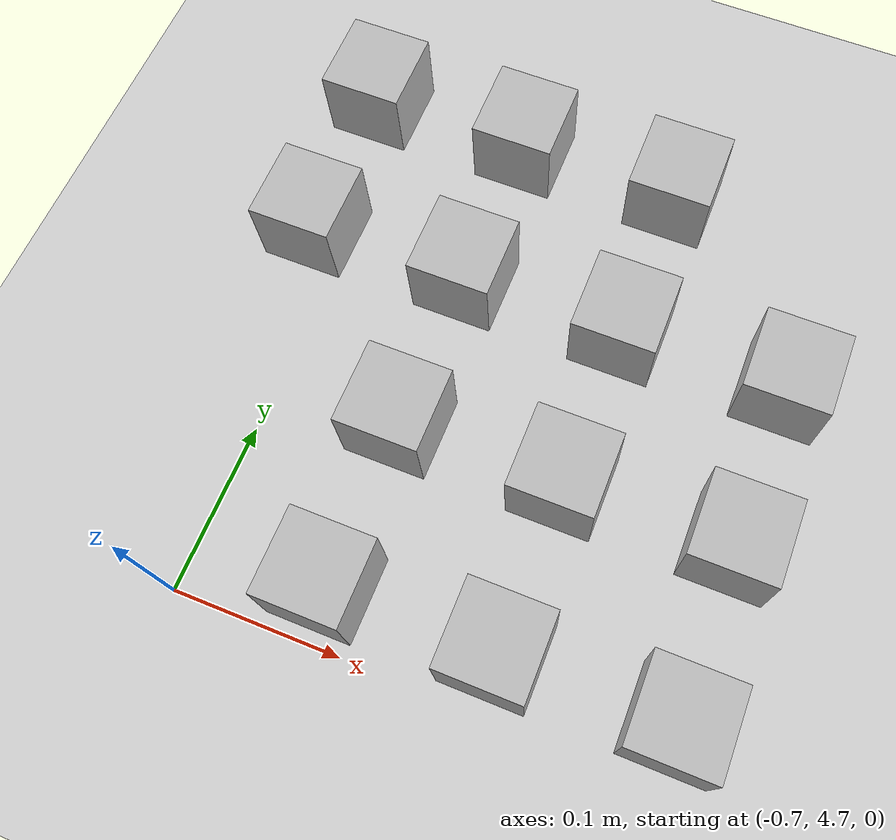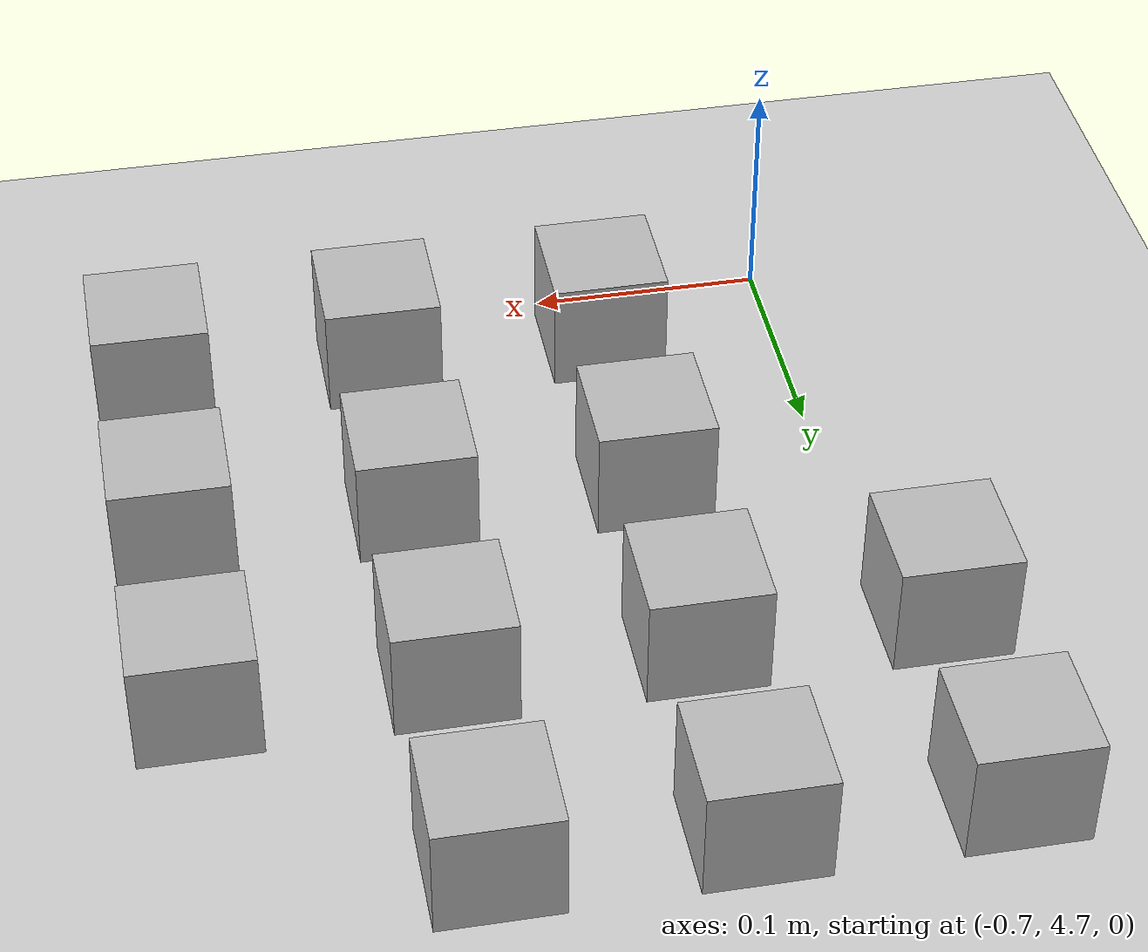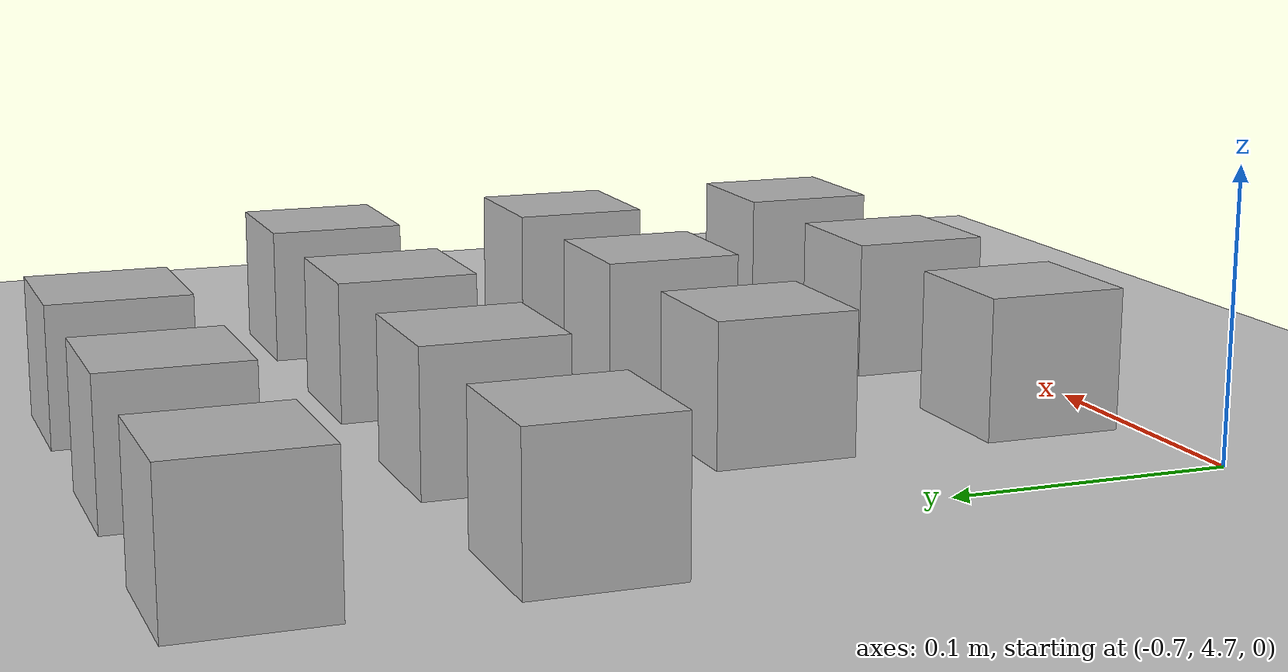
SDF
<sdf version="1.4">
 <world name="default">
  <model name="ground_plane">
   <static>1</static>
   <link name="link">
    <collision name="collision">
     <geometry><plane><normal>0 0 1</normal><size>100 100</size></plane></geometry>
     <surface><friction><ode><mu>100</mu><mu2>50</mu2></ode></friction></surface>
    </collision>
    <visual name="visual">
     <cast_shadows>0</cast_shadows>
     <geometry><plane><normal>0 0 1</normal><size>100 100</size></plane></geometry>
     <material>
      <script><uri>file://media/materials/scripts/gazebo.material</uri><name>Gazebo/Grey</name></script>
     </material>
    </visual>
    <velocity_decay><linear>0</linear><angular>0</angular></velocity_decay>
   </link>
  </model>
  <model name="at37">
   <static>0</static>
   <link name="link">
    <inertial>
     <mass>0.01</mass>
     <inertia><ixx>4e-05</ixx><ixy>0</ixy><ixz>0</ixz><iyy>4e-05</iyy><iyz>0</iyz><izz>4e-05</izz></inertia>
    </inertial>
    <visual name="visual">
     <geometry><box><size>0.05 0.05 0.05</size></box></geometry>
     <material>
      <script>
       <uri>model://at0/materials/scripts</uri>
       <uri>model://at0/materials/textures</uri>
       <name>at0/Diffuse</name>
      </script>
     </material>
    </visual>
    <collision name="collision">
     <geometry><box><size>0.05 0.05 0.05</size></box></geometry>
     <surface><friction><ode><mu>0.8</mu><mu2>0.7</mu2></ode></friction></surface>
    </collision>
    <velocity_decay><linear>0</linear><angular>0</angular></velocity_decay>
   </link>
   <pose>-0.622342 4.73291 0.025 0 -0 0</pose>
  </model>
  <model name="at38">
   <static>0</static>
   <link name="link">
    <inertial>
     <mass>0.01</mass>
     <inertia><ixx>4e-05</ixx><ixy>0</ixy><ixz>0</ixz><iyy>4e-05</iyy><iyz>0</iyz><izz>4e-05</izz></inertia>
    </inertial>
    <visual name="visual">
     <geometry><box><size>0.05 0.05 0.05</size></box></geometry>
     <material>
      <script>
       <uri>model://at0/materials/scripts</uri>
       <uri>model://at0/materials/textures</uri>
       <name>at0/Diffuse</name>
      </script>
     </material>
    </visual>
    <collision name="collision">
     <geometry><box><size>0.05 0.05 0.05</size></box></geometry>
     <surface><friction><ode><mu>0.8</mu><mu2>0.7</mu2></ode></friction></surface>
    </collision>
    <velocity_decay><linear>0</linear><angular>0</angular></velocity_decay>
   </link>
   <pose>-0.522342 4.73291 0.025 0 -0 0</pose>
  </model>
  <model name="at39">
   <static>0</static>
   <link name="link">
    <inertial>
     <mass>0.01</mass>
     <inertia><ixx>4e-05</ixx><ixy>0</ixy><ixz>0</ixz><iyy>4e-05</iyy><iyz>0</iyz><izz>4e-05</izz></inertia>
    </inertial>
    <visual name="visual">
     <geometry><box><size>0.05 0.05 0.05</size></box></geometry>
     <material>
      <script>
       <uri>model://at0/materials/scripts</uri>
       <uri>model://at0/materials/textures</uri>
       <name>at0/Diffuse</name>
      </script>
     </material>
    </visual>
    <collision name="collision">
     <geometry><box><size>0.05 0.05 0.05</size></box></geometry>
     <surface><friction><ode><mu>0.8</mu><mu2>0.7</mu2></ode></friction></surface>
    </collision>
    <velocity_decay><linear>0</linear><angular>0</angular></velocity_decay>
   </link>
   <pose>-0.422342 4.73291 0.025 0 -0 0</pose>
  </model>
  <model name="at45">
   <static>0</static>
   <link name="link">
    <inertial>
     <mass>0.01</mass>
     <inertia><ixx>4e-05</ixx><ixy>0</ixy><ixz>0</ixz><iyy>4e-05</iyy><iyz>0</iyz><izz>4e-05</izz></inertia>
    </inertial>
    <visual name="visual">
     <geometry><box><size>0.05 0.05 0.05</size></box></geometry>
     <material>
      <script>
       <uri>model://at0/materials/scripts</uri>
       <uri>model://at0/materials/textures</uri>
       <name>at0/Diffuse</name>
      </script>
     </material>
    </visual>
    <collision name="collision">
     <geometry><box><size>0.05 0.05 0.05</size></box></geometry>
     <surface><friction><ode><mu>0.8</mu><mu2>0.7</mu2></ode></friction></surface>
    </collision>
    <velocity_decay><linear>0</linear><angular>0</angular></velocity_decay>
   </link>
   <pose>-0.622342 4.83291 0.025 0 -0 0</pose>
  </model>
  <model name="at46">
   <static>0</static>
   <link name="link">
    <inertial>
     <mass>0.01</mass>
     <inertia><ixx>4e-05</ixx><ixy>0</ixy><ixz>0</ixz><iyy>4e-05</iyy><iyz>0</iyz><izz>4e-05</izz></inertia>
    </inertial>
    <visual name="visual">
     <geometry><box><size>0.05 0.05 0.05</size></box></geometry>
     <material>
      <script>
       <uri>model://at0/materials/scripts</uri>
       <uri>model://at0/materials/textures</uri>
       <name>at0/Diffuse</name>
      </script>
     </material>
    </visual>
    <collision name="collision">
     <geometry><box><size>0.05 0.05 0.05</size></box></geometry>
     <surface><friction><ode><mu>0.8</mu><mu2>0.7</mu2></ode></friction></surface>
    </collision>
    <velocity_decay><linear>0</linear><angular>0</angular></velocity_decay>
   </link>
   <pose>-0.522342 4.83291 0.025 0 -0 0</pose>
  </model>
  <model name="at47">
   <static>0</static>
   <link name="link">
    <inertial>
     <mass>0.01</mass>
     <inertia><ixx>4e-05</ixx><ixy>0</ixy><ixz>0</ixz><iyy>4e-05</iyy><iyz>0</iyz><izz>4e-05</izz></inertia>
    </inertial>
    <visual name="visual">
     <geometry><box><size>0.05 0.05 0.05</size></box></geometry>
     <material>
      <script>
       <uri>model://at0/materials/scripts</uri>
       <uri>model://at0/materials/textures</uri>
       <name>at0/Diffuse</name>
      </script>
     </material>
    </visual>
    <collision name="collision">
     <geometry><box><size>0.05 0.05 0.05</size></box></geometry>
     <surface><friction><ode><mu>0.8</mu><mu2>0.7</mu2></ode></friction></surface>
    </collision>
    <velocity_decay><linear>0</linear><angular>0</angular></velocity_decay>
   </link>
   <pose>-0.422342 4.83291 0.025 0 -0 0</pose>
  </model>
  <model name="at52">
   <static>0</static>
   <link name="link">
    <inertial>
     <mass>0.01</mass>
     <inertia><ixx>4e-05</ixx><ixy>0</ixy><ixz>0</ixz><iyy>4e-05</iyy><iyz>0</iyz><izz>4e-05</izz></inertia>
    </inertial>
    <visual name="visual">
     <geometry><box><size>0.05 0.05 0.05</size></box></geometry>
     <material>
      <script>
       <uri>model://at0/materials/scripts</uri>
       <uri>model://at0/materials/textures</uri>
       <name>at0/Diffuse</name>
      </script>
     </material>
    </visual>
    <collision name="collision">
     <geometry><box><size>0.05 0.05 0.05</size></box></geometry>
     <surface><friction><ode><mu>0.8</mu><mu2>0.7</mu2></ode></friction></surface>
    </collision>
    <velocity_decay><linear>0</linear><angular>0</angular></velocity_decay>
   </link>
   <pose>-0.722342 4.93291 0.025 0 -0 0</pose>
  </model>
  <model name="at53">
   <static>0</static>
   <link name="link">
    <inertial>
     <mass>0.01</mass>
     <inertia><ixx>4e-05</ixx><ixy>0</ixy><ixz>0</ixz><iyy>4e-05</iyy><iyz>0</iyz><izz>4e-05</izz></inertia>
    </inertial>
    <visual name="visual">
     <geometry><box><size>0.05 0.05 0.05</size></box></geometry>
     <material>
      <script>
       <uri>model://at0/materials/scripts</uri>
       <uri>model://at0/materials/textures</uri>
       <name>at0/Diffuse</name>
      </script>
     </material>
    </visual>
    <collision name="collision">
     <geometry><box><size>0.05 0.05 0.05</size></box></geometry>
     <surface><friction><ode><mu>0.8</mu><mu2>0.7</mu2></ode></friction></surface>
    </collision>
    <velocity_decay><linear>0</linear><angular>0</angular></velocity_decay>
   </link>
   <pose>-0.622342 4.93291 0.025 0 -0 0</pose>
  </model>
  <model name="at54">
   <static>0</static>
   <link name="link">
    <inertial>
     <mass>0.01</mass>
     <inertia><ixx>4e-05</ixx><ixy>0</ixy><ixz>0</ixz><iyy>4e-05</iyy><iyz>0</iyz><izz>4e-05</izz></inertia>
    </inertial>
    <visual name="visual">
     <geometry><box><size>0.05 0.05 0.05</size></box></geometry>
     <material>
      <script>
       <uri>model://at0/materials/scripts</uri>
       <uri>model://at0/materials/textures</uri>
       <name>at0/Diffuse</name>
      </script>
     </material>
    </visual>
    <collision name="collision">
     <geometry><box><size>0.05 0.05 0.05</size></box></geometry>
     <surface><friction><ode><mu>0.8</mu><mu2>0.7</mu2></ode></friction></surface>
    </collision>
    <velocity_decay><linear>0</linear><angular>0</angular></velocity_decay>
   </link>
   <pose>-0.522342 4.93291 0.025 0 -0 0</pose>
  </model>
  <model name="at55">
   <static>0</static>
   <link name="link">
    <inertial>
     <mass>0.01</mass>
     <inertia><ixx>4e-05</ixx><ixy>0</ixy><ixz>0</ixz><iyy>4e-05</iyy><iyz>0</iyz><izz>4e-05</izz></inertia>
    </inertial>
    <visual name="visual">
     <geometry><box><size>0.05 0.05 0.05</size></box></geometry>
     <material>
      <script>
       <uri>model://at0/materials/scripts</uri>
       <uri>model://at0/materials/textures</uri>
       <name>at0/Diffuse</name>
      </script>
     </material>
    </visual>
    <collision name="collision">
     <geometry><box><size>0.05 0.05 0.05</size></box></geometry>
     <surface><friction><ode><mu>0.8</mu><mu2>0.7</mu2></ode></friction></surface>
    </collision>
    <velocity_decay><linear>0</linear><angular>0</angular></velocity_decay>
   </link>
   <pose>-0.422342 4.93291 0.025 0 -0 0</pose>
  </model>
  <model name="at60">
   <static>0</static>
   <link name="link">
    <inertial>
     <mass>0.01</mass>
     <inertia><ixx>4e-05</ixx><ixy>0</ixy><ixz>0</ixz><iyy>4e-05</iyy><iyz>0</iyz><izz>4e-05</izz></inertia>
    </inertial>
    <visual name="visual">
     <geometry><box><size>0.05 0.05 0.05</size></box></geometry>
     <material>
      <script>
       <uri>model://at0/materials/scripts</uri>
       <uri>model://at0/materials/textures</uri>
       <name>at0/Diffuse</name>
      </script>
     </material>
    </visual>
    <collision name="collision">
     <geometry><box><size>0.05 0.05 0.05</size></box></geometry>
     <surface><friction><ode><mu>0.8</mu><mu2>0.7</mu2></ode></friction></surface>
    </collision>
    <velocity_decay><linear>0</linear><angular>0</angular></velocity_decay>
   </link>
   <pose>-0.722342 5.03291 0.025 0 -0 0</pose>
  </model>
  <model name="at61">
   <static>0</static>
   <link name="link">
    <inertial>
     <mass>0.01</mass>
     <inertia><ixx>4e-05</ixx><ixy>0</ixy><ixz>0</ixz><iyy>4e-05</iyy><iyz>0</iyz><izz>4e-05</izz></inertia>
    </inertial>
    <visual name="visual">
     <geometry><box><size>0.05 0.05 0.05</size></box></geometry>
     <material>
      <script>
       <uri>model://at0/materials/scripts</uri>
       <uri>model://at0/materials/textures</uri>
       <name>at0/Diffuse</name>
      </script>
     </material>
    </visual>
    <collision name="collision">
     <geometry><box><size>0.05 0.05 0.05</size></box></geometry>
     <surface><friction><ode><mu>0.8</mu><mu2>0.7</mu2></ode></friction></surface>
    </collision>
    <velocity_decay><linear>0</linear><angular>0</angular></velocity_decay>
   </link>
   <pose>-0.622342 5.03291 0.025 0 -0 0</pose>
  </model>
  <model name="at62">
   <static>0</static>
   <link name="link">
    <inertial>
     <mass>0.01</mass>
     <inertia><ixx>4e-05</ixx><ixy>0</ixy><ixz>0</ixz><iyy>4e-05</iyy><iyz>0</iyz><izz>4e-05</izz></inertia>
    </inertial>
    <visual name="visual">
     <geometry><box><size>0.05 0.05 0.05</size></box></geometry>
     <material>
      <script>
       <uri>model://at0/materials/scripts</uri>
       <uri>model://at0/materials/textures</uri>
       <name>at0/Diffuse</name>
      </script>
     </material>
    </visual>
    <collision name="collision">
     <geometry><box><size>0.05 0.05 0.05</size></box></geometry>
     <surface><friction><ode><mu>0.8</mu><mu2>0.7</mu2></ode></friction></surface>
    </collision>
    <velocity_decay><linear>0</linear><angular>0</angular></velocity_decay>
   </link>
   <pose>-0.522342 5.03291 0.025 0 -0 0</pose>
  </model>
 </world>
</sdf>
